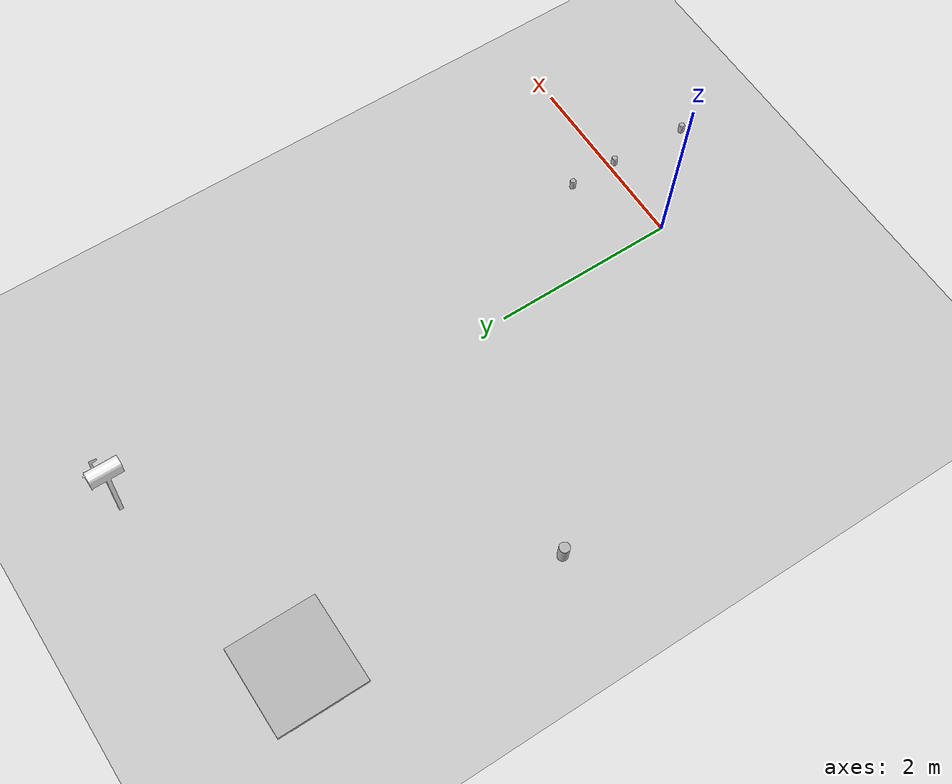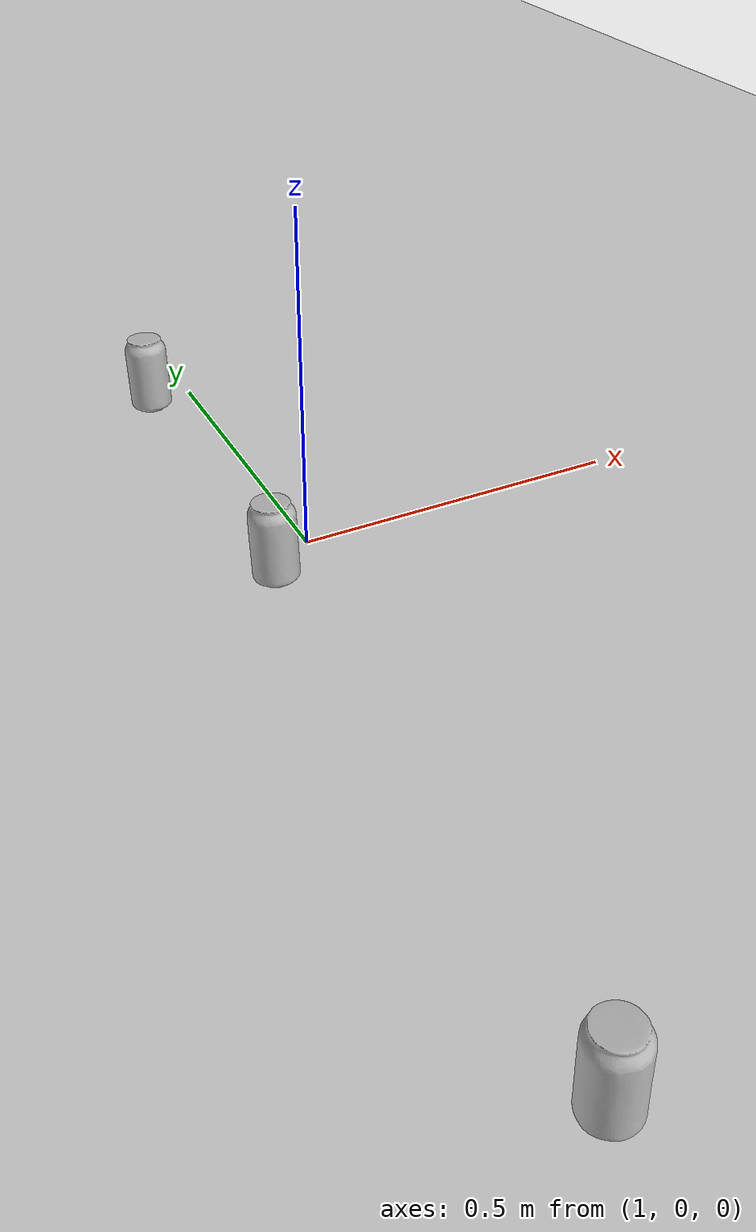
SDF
<sdf version="1.7">
 <world name="default">
  <light name="sun" type="directional">
   <pose>0 0 10 0 -0 0</pose>
   <diffuse>0.8 0.8 0.8 1</diffuse>
   <specular>0.2 0.2 0.2 1</specular>
   <attenuation>
    <range>1000</range>
    <constant>0.9</constant>
    <linear>0.01</linear>
    <quadratic>0.001</quadratic>
   </attenuation>
   <direction>-0.5 0.1 -0.9</direction>
   <spot><inner_angle>0</inner_angle><outer_angle>0</outer_angle><falloff>0</falloff></spot>
  </light>
  <model name="ground_plane">
   <static>1</static>
   <link name="link">
    <collision name="collision">
     <geometry><plane><normal>0 0 1</normal><size>100 100</size></plane></geometry>
     <surface>
      <contact><collide_bitmask>65535</collide_bitmask></contact>
      <friction><ode><mu>100</mu><mu2>50</mu2></ode></friction>
     </surface>
    </collision>
    <visual name="visual">
     <cast_shadows>0</cast_shadows>
     <geometry><plane><normal>0 0 1</normal><size>100 100</size></plane></geometry>
     <material>
      <script><uri>file://media/materials/scripts/gazebo.material</uri><name>Gazebo/Grey</name></script>
     </material>
    </visual>
   </link>
  </model>
  <gravity>0 0 -9.8</gravity>
  <magnetic_field>6e-06 2.3e-05 -4.2e-05</magnetic_field>
  <atmosphere type="adiabatic"/>
  <physics type="ode">
   <max_step_size>0.001</max_step_size>
   <real_time_factor>1</real_time_factor>
   <real_time_update_rate>1000</real_time_update_rate>
  </physics>
  <scene><ambient>0.4 0.4 0.4 1</ambient><background>0.7 0.7 0.7 1</background><shadows>1</shadows></scene>
  <spherical_coordinates>
   <surface_model>EARTH_WGS84</surface_model>
   <latitude_deg>0</latitude_deg>
   <longitude_deg>0</longitude_deg>
   <elevation>0</elevation>
   <heading_deg>0</heading_deg>
  </spherical_coordinates>
  <model name="beer">
   <link name="link">
    <pose>0 0 0.115 0 -0 0</pose>
    <inertial>
     <mass>0.39</mass>
     <inertia><ixx>0.00058</ixx><ixy>0</ixy><ixz>0</ixz><iyy>0.00058</iyy><iyz>0</iyz><izz>0.00019</izz></inertia>
    </inertial>
    <collision name="collision">
     <geometry><cylinder><radius>0.055</radius><length>0.23</length></cylinder></geometry>
    </collision>
    <visual name="visual">
     <geometry><cylinder><radius>0.055</radius><length>0.23</length></cylinder></geometry>
     <material>
      <script>
       <uri>model://beer/materials/scripts</uri>
       <uri>model://beer/materials/textures</uri>
       <name>Beer/Diffuse</name>
      </script>
     </material>
    </visual>
   </link>
   <pose>-2.39512 2.96499 -2e-06 0 -0 -1.5e-05</pose>
  </model>
  <model name="cafe_table">
   <static>1</static>
   <link name="link">
    <collision name="surface">
     <pose>0 0 0.755 0 -0 0</pose>
     <geometry><box><size>0.913 0.913 0.04</size></box></geometry>
    </collision>
    <collision name="column">
     <pose>0 0 0.37 0 -0 0</pose>
     <geometry><box><size>0.042 0.042 0.74</size></box></geometry>
    </collision>
    <collision name="base">
     <pose>0 0 0.02 0 -0 0</pose>
     <geometry><box><size>0.56 0.56 0.04</size></box></geometry>
    </collision>
    <visual name="visual">
     <geometry><mesh><uri>model://cafe_table/meshes/cafe_table.dae</uri></mesh></geometry>
    </visual>
   </link>
   <pose>-2.16133 5.66543 0 0 -0 0</pose>
  </model>
  <model name="Mailbox">
   <link name="link">
    <collision name="collision">
     <geometry><mesh><uri>model://mailbox/meshes/mailbox.dae</uri></mesh></geometry>
    </collision>
    <visual name="visual">
     <geometry><mesh><uri>model://mailbox/meshes/mailbox.dae</uri></mesh></geometry>
     <material>
      <script>
       <uri>model://mailbox/materials/scripts</uri>
       <uri>model://mailbox/materials/textures</uri>
       <name>Mailbox/Diffuse</name>
      </script>
     </material>
    </visual>
    <inertial>
     <inertia><ixx>1</ixx><ixy>0</ixy><ixz>0</ixz><iyy>1</iyy><iyz>0</iyz><izz>1</izz></inertia>
     <mass>1</mass>
    </inertial>
   </link>
   <pose>0.27655 6.2249 0 8e-06 -6e-06 -0</pose>
  </model>
  <model name="coke_can">
   <link name="link">
    <inertial>
     <pose>0 0 0.06 0 -0 0</pose>
     <mass>0.39</mass>
     <inertia>
      <ixx>0.00055575</ixx>
      <ixy>0</ixy>
      <ixz>0</ixz>
      <iyy>0.00055575</iyy>
      <iyz>0</iyz>
      <izz>0.0001755</izz>
     </inertia>
    </inertial>
    <collision name="collision">
     <pose>0.003937 0.004724 -0.18 0 -0 0</pose>
     <geometry><mesh><uri>model://coke_can/meshes/coke_can.dae</uri></mesh></geometry>
     <surface>
      <friction><ode><mu>1</mu><mu2>1</mu2></ode></friction>
      <contact><ode><kp>1e+07</kp><kd>1</kd><min_depth>0.001</min_depth><max_vel>0.1</max_vel></ode></contact>
     </surface>
    </collision>
    <visual name="visual">
     <pose>0.003937 0.004724 -0.18 0 -0 0</pose>
     <geometry><mesh><uri>model://coke_can/meshes/coke_can.dae</uri></mesh></geometry>
    </visual>
   </link>
   <pose>0.927846 -0.05881 -0.003105 -0.057206 -0.011279 -0.00072</pose>
  </model>
  <model name="coke_can_0">
   <link name="link">
    <inertial>
     <pose>0 0 0.06 0 -0 0</pose>
     <mass>0.39</mass>
     <inertia>
      <ixx>0.00055575</ixx>
      <ixy>0</ixy>
      <ixz>0</ixz>
      <iyy>0.00055575</iyy>
      <iyz>0</iyz>
      <izz>0.0001755</izz>
     </inertia>
    </inertial>
    <collision name="collision">
     <pose>0.003937 0.004724 -0.18 0 -0 0</pose>
     <geometry><mesh><uri>model://coke_can/meshes/coke_can.dae</uri></mesh></geometry>
     <surface>
      <friction><ode><mu>1</mu><mu2>1</mu2></ode></friction>
      <contact><ode><kp>1e+07</kp><kd>1</kd><min_depth>0.001</min_depth><max_vel>0.1</max_vel></ode></contact>
     </surface>
    </collision>
    <visual name="visual">
     <pose>0.003937 0.004724 -0.18 0 -0 0</pose>
     <geometry><mesh><uri>model://coke_can/meshes/coke_can.dae</uri></mesh></geometry>
    </visual>
   </link>
   <pose>0.928164 0.482676 -0.003186 -0.052531 -0.006361 -0.00077</pose>
  </model>
  <model name="coke_can_1">
   <link name="link">
    <inertial>
     <pose>0 0 0.06 0 -0 0</pose>
     <mass>0.39</mass>
     <inertia>
      <ixx>0.00055575</ixx>
      <ixy>0</ixy>
      <ixz>0</ixz>
      <iyy>0.00055575</iyy>
      <iyz>0</iyz>
      <izz>0.0001755</izz>
     </inertia>
    </inertial>
    <collision name="collision">
     <pose>0.003937 0.004724 -0.18 0 -0 0</pose>
     <geometry><mesh><uri>model://coke_can/meshes/coke_can.dae</uri></mesh></geometry>
     <surface>
      <friction><ode><mu>1</mu><mu2>1</mu2></ode></friction>
      <contact><ode><kp>1e+07</kp><kd>1</kd><min_depth>0.001</min_depth><max_vel>0.1</max_vel></ode></contact>
     </surface>
    </collision>
    <visual name="visual">
     <pose>0.003937 0.004724 -0.18 0 -0 0</pose>
     <geometry><mesh><uri>model://coke_can/meshes/coke_can.dae</uri></mesh></geometry>
    </visual>
   </link>
   <pose>0.88361 -0.922322 -0.003136 -0.055405 -0.009372 -0.000735</pose>
  </model>
 </world>
</sdf>
